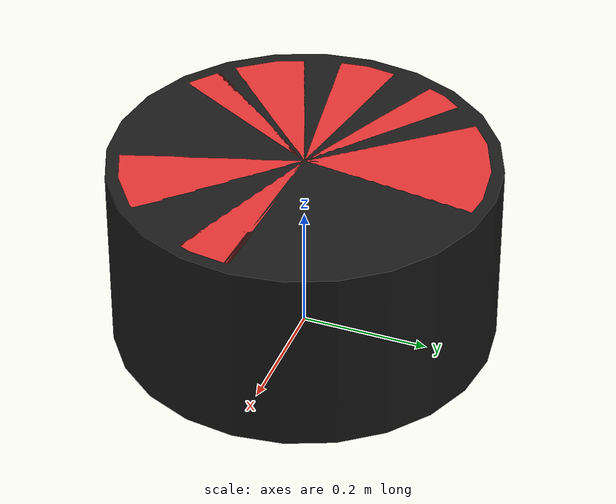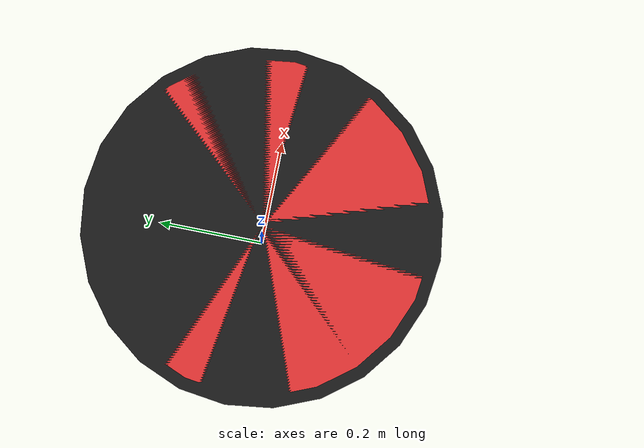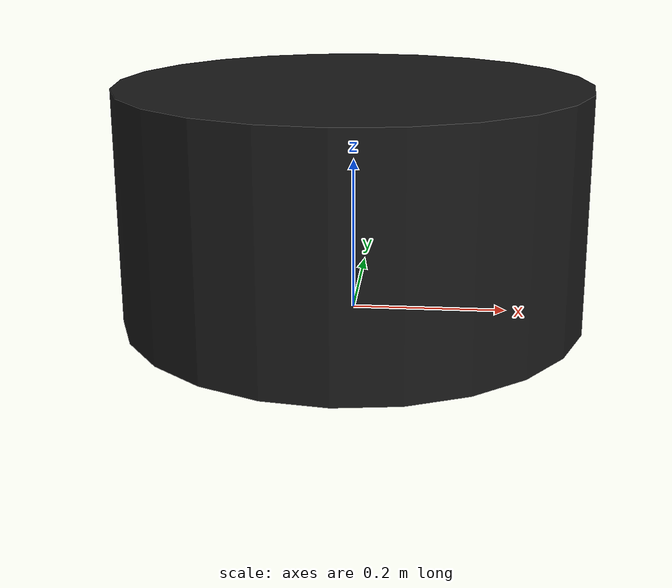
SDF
<?xml version="1.0"?>
<sdf version="1.8">
  <!-- SAUVC 2026 Red Drum
       Diameter: 60cm, Depth: 30cm
       Color: Black exterior, Red interior
  -->
  <model name="red_drum">
    <static>true</static>

    <link name="drum_body">
      <pose>0 0 0.15 0 0 0</pose>
      <inertial>
        <mass>5.0</mass>
        <inertia>
          <ixx>0.1</ixx><ixy>0</ixy><ixz>0</ixz>
          <iyy>0.1</iyy><iyz>0</iyz><izz>0.15</izz>
        </inertia>
      </inertial>

      <!-- Outer cylinder - Black exterior -->
      <visual name="drum_outer">
        <geometry>
          <cylinder>
            <radius>0.30</radius>
            <length>0.30</length>
          </cylinder>
        </geometry>
        <material>
          <ambient>0.05 0.05 0.05 1</ambient>
          <diffuse>0.1 0.1 0.1 1</diffuse>
          <specular>0.2 0.2 0.2 1</specular>
        </material>
      </visual>

      <!-- Inner hollow visual (Red) -->
      <visual name="drum_inner">
        <pose>0 0 0.02 0 0 0</pose>
        <geometry>
          <cylinder>
            <radius>0.28</radius>
            <length>0.26</length>
          </cylinder>
        </geometry>
        <material>
          <ambient>0.8 0.1 0.1 1</ambient>
          <diffuse>0.9 0.2 0.2 1</diffuse>
          <specular>0.3 0.3 0.3 1</specular>
        </material>
      </visual>

      <collision name="drum_collision">
        <geometry>
          <cylinder>
            <radius>0.30</radius>
            <length>0.30</length>
          </cylinder>
        </geometry>
      </collision>
    </link>

  </model>
</sdf>
